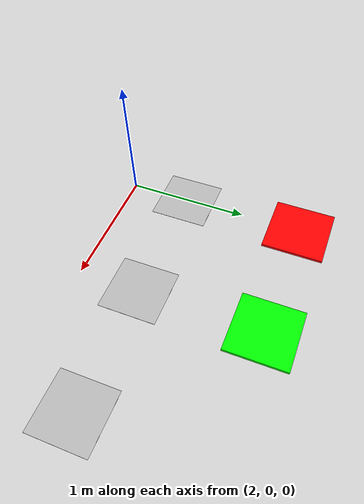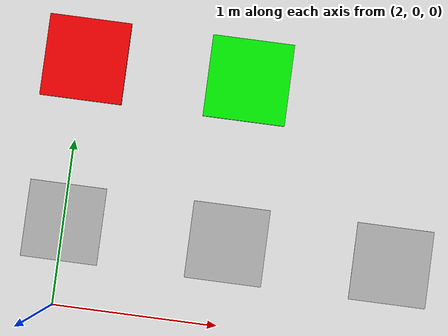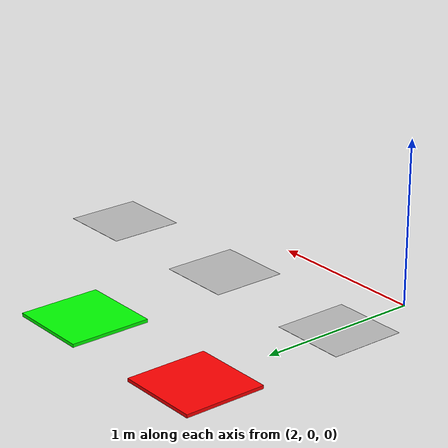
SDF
<sdf version="1.6">
 <world name="default">
  <model name="green">
   <link name="link">
    <inertial>
     <mass>1</mass>
     <inertia>
      <ixx>0.166667</ixx>
      <ixy>0</ixy>
      <ixz>0</ixz>
      <iyy>0.166667</iyy>
      <iyz>0</iyz>
      <izz>0.166667</izz>
     </inertia>
    </inertial>
    <visual name="visual">
     <geometry><box><size>0.5 0.5 0.02</size></box></geometry>
     <material>
      <script><name>Gazebo/Grey</name><uri>file://media/materials/scripts/gazebo.material</uri></script>
      <shader type="pixel"><normal_map>__default__</normal_map></shader>
      <ambient>0 1 0 1</ambient>
      <diffuse>0 1 0 1</diffuse>
      <specular>0 0 0 1</specular>
      <emissive>0 0 0 1</emissive>
     </material>
    </visual>
    <collision name="collision">
     <geometry><box><size>0.5 0.5 0.02</size></box></geometry>
     <surface>
      <friction>
       <ode><mu>1</mu><mu2>1</mu2><fdir1>0 0 0</fdir1><slip1>0</slip1><slip2>0</slip2></ode>
       <torsional>
        <coefficient>1</coefficient>
        <patch_radius>0</patch_radius>
        <surface_radius>0</surface_radius>
        <use_patch_radius>1</use_patch_radius>
        <ode><slip>0</slip></ode>
       </torsional>
      </friction>
      <bounce><restitution_coefficient>0</restitution_coefficient><threshold>1e+06</threshold></bounce>
      <contact>
       <collide_without_contact>0</collide_without_contact>
       <collide_without_contact_bitmask>1</collide_without_contact_bitmask>
       <collide_bitmask>1</collide_bitmask>
       <ode>
        <soft_cfm>0</soft_cfm>
        <soft_erp>0.2</soft_erp>
        <kp>1e+13</kp>
        <kd>1</kd>
        <max_vel>0.01</max_vel>
        <min_depth>0</min_depth>
       </ode>
       <bullet>
        <split_impulse>1</split_impulse>
        <split_impulse_penetration_threshold>-0.01</split_impulse_penetration_threshold>
        <soft_cfm>0</soft_cfm>
        <soft_erp>0.2</soft_erp>
        <kp>1e+13</kp>
        <kd>1</kd>
       </bullet>
      </contact>
     </surface>
    </collision>
   </link>
   <static>1</static>
   <pose>3 1.5 0 0 -0 0</pose>
  </model>
  <model name="red">
   <link name="link">
    <inertial>
     <mass>1</mass>
     <inertia>
      <ixx>0.166667</ixx>
      <ixy>0</ixy>
      <ixz>0</ixz>
      <iyy>0.166667</iyy>
      <iyz>0</iyz>
      <izz>0.166667</izz>
     </inertia>
    </inertial>
    <visual name="visual">
     <geometry><box><size>0.5 0.5 0.02</size></box></geometry>
     <material>
      <script><name>Gazebo/Grey</name><uri>file://media/materials/scripts/gazebo.material</uri></script>
      <shader type="pixel"><normal_map>__default__</normal_map></shader>
      <ambient>1 0 0 1</ambient>
      <diffuse>1 0 0 1</diffuse>
      <specular>0 0 0 1</specular>
      <emissive>0 0 0 1</emissive>
     </material>
    </visual>
    <collision name="collision">
     <geometry><box><size>0.5 0.5 0.02</size></box></geometry>
     <surface>
      <friction>
       <ode><mu>1</mu><mu2>1</mu2><fdir1>0 0 0</fdir1><slip1>0</slip1><slip2>0</slip2></ode>
       <torsional>
        <coefficient>1</coefficient>
        <patch_radius>0</patch_radius>
        <surface_radius>0</surface_radius>
        <use_patch_radius>1</use_patch_radius>
        <ode><slip>0</slip></ode>
       </torsional>
      </friction>
      <bounce><restitution_coefficient>0</restitution_coefficient><threshold>1e+06</threshold></bounce>
      <contact>
       <collide_without_contact>0</collide_without_contact>
       <collide_without_contact_bitmask>1</collide_without_contact_bitmask>
       <collide_bitmask>1</collide_bitmask>
       <ode>
        <soft_cfm>0</soft_cfm>
        <soft_erp>0.2</soft_erp>
        <kp>1e+13</kp>
        <kd>1</kd>
        <max_vel>0.01</max_vel>
        <min_depth>0</min_depth>
       </ode>
       <bullet>
        <split_impulse>1</split_impulse>
        <split_impulse_penetration_threshold>-0.01</split_impulse_penetration_threshold>
        <soft_cfm>0</soft_cfm>
        <soft_erp>0.2</soft_erp>
        <kp>1e+13</kp>
        <kd>1</kd>
       </bullet>
      </contact>
     </surface>
    </collision>
   </link>
   <static>1</static>
   <pose>2 1.5 0 0 -0 0</pose>
  </model>
  <model name="aruco_200">
   <static>1</static>
   <link name="marker_200_link">
    <pose>0 0 0.001 0 -0 1.5708</pose>
    <visual name="visual_marker_200">
     <cast_shadows>0</cast_shadows>
     <geometry><box><size>0.466667 0.466667 0.001</size></box></geometry>
     <material>
      <script>
       <uri>model://aruco_200/materials/scripts</uri>
       <uri>model://aruco_200/materials/textures</uri>
       <name>aruco/marker_200</name>
      </script>
     </material>
    </visual>
   </link>
   <pose>2 0.5 0 0 -0 0</pose>
  </model>
  <model name="aruco_202">
   <static>1</static>
   <link name="marker_202_link">
    <pose>0 0 0.001 0 -0 1.5708</pose>
    <visual name="visual_marker_202">
     <cast_shadows>0</cast_shadows>
     <geometry><box><size>0.466667 0.466667 0.001</size></box></geometry>
     <material>
      <script>
       <uri>model://aruco_202/materials/scripts</uri>
       <uri>model://aruco_202/materials/textures</uri>
       <name>aruco/marker_202</name>
      </script>
     </material>
    </visual>
   </link>
   <pose>3 0.5 0 0 -0 0</pose>
  </model>
  <model name="aruco_202_0">
   <static>1</static>
   <link name="marker_202_link">
    <pose>0 0 0.001 0 -0 1.5708</pose>
    <visual name="visual_marker_202">
     <cast_shadows>0</cast_shadows>
     <geometry><box><size>0.466667 0.466667 0.001</size></box></geometry>
     <material>
      <script>
       <uri>model://aruco_202/materials/scripts</uri>
       <uri>model://aruco_202/materials/textures</uri>
       <name>aruco/marker_202</name>
      </script>
     </material>
    </visual>
   </link>
   <pose>4 0.5 0 0 -0 0</pose>
  </model>
 </world>
</sdf>
